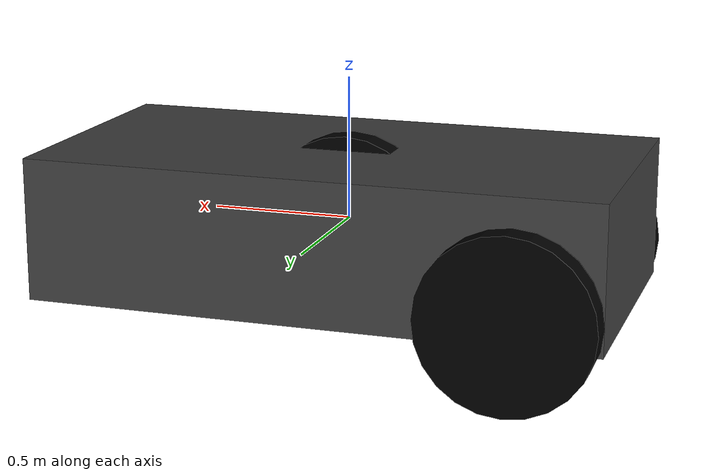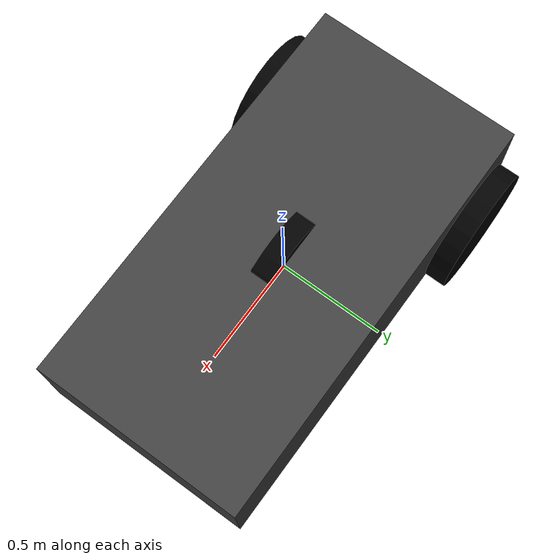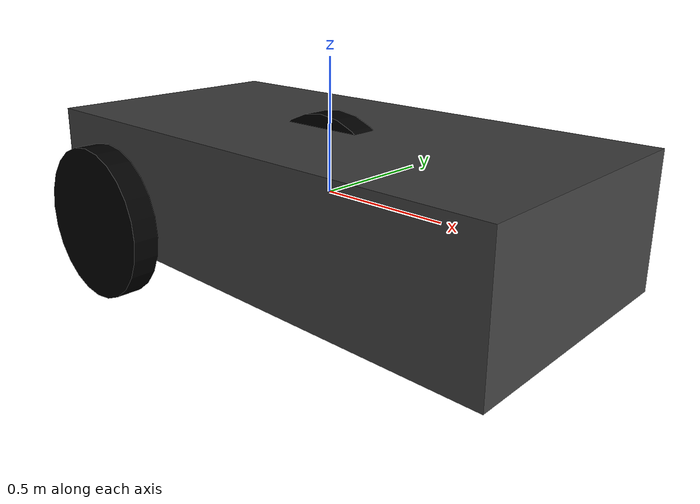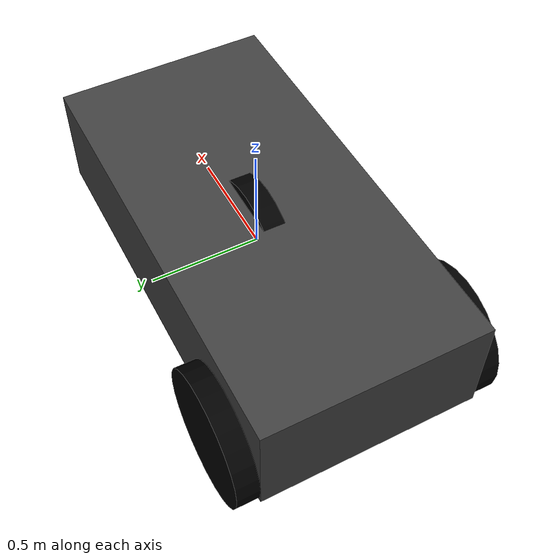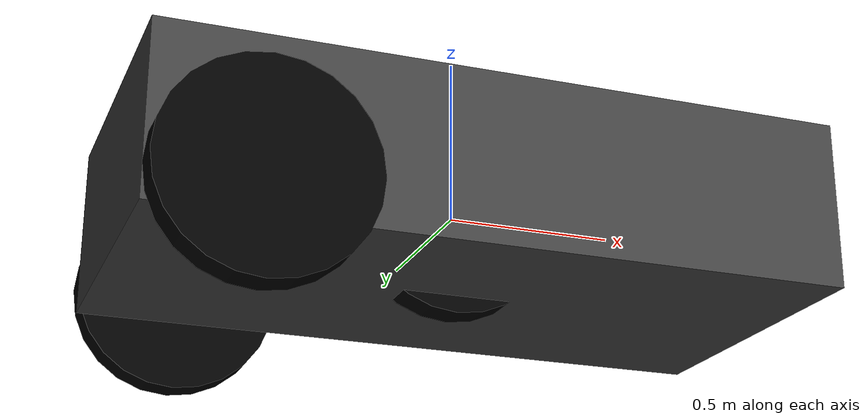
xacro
<?xml version="1.0"?>

<robot name="ackerman_robot" xmlns:xacro="http://www.ros.org/wiki/xacro">

  <!-- Arguments -->
  <xacro:arg name="body_length" default="2.0" />
  <xacro:arg name="body_width" default="1.0" />
  <xacro:arg name="body_height" default="0.5" />
  <xacro:arg name="body_density" default="1000.0" />
  <xacro:arg name="wheel_radius" default="0.3" />
  <xacro:arg name="wheel_width" default="0.1" />
  <xacro:arg name="wheel_density" default="1000.0" />
  <xacro:arg name="max_steering_angle" default="10.6108" />
  <xacro:arg name="max_steering_angular_velocity" default="10.570796" />
  <xacro:arg name="max_steering_effort" default="10.0" />
  <xacro:arg name="max_velocity" default="10.0" />
  <xacro:arg name="max_effort" default="10.0" />

  <!-- Mathematical Constants -->
  <xacro:property name="PI" value="3.14159265"/>

  <!-- Vehicle Properties -->
  <xacro:property name="body_length" value="$(arg body_length)"/>
  <xacro:property name="body_width" value="$(arg body_width)"/>
  <xacro:property name="body_height" value="$(arg body_height)"/>
  <xacro:property name="body_density" value="$(arg body_density)"/>
  <xacro:property name="wheel_radius" value="$(arg wheel_radius)"/>
  <xacro:property name="wheel_width" value="$(arg wheel_width)"/>
  <xacro:property name="wheel_density" value="$(arg wheel_density)"/>
  <xacro:property name="max_steering_angle" value="$(arg max_steering_angle)"/>
  <xacro:property name="max_steering_angular_velocity" value="$(arg max_steering_angular_velocity)"/>
  <xacro:property name="max_steering_effort" value="$(arg max_steering_effort)"/>
  <xacro:property name="max_velocity" value="$(arg max_velocity)"/>
  <xacro:property name="max_effort" value="$(arg max_effort)"/>

  <xacro:property name="body_mass" value="${body_density * body_length * body_height * body_width}"/>
  <xacro:property name="body_inertia_x" value="${1.0/12.0 * body_mass * (body_height*body_height + body_width*body_width)}"/>
  <xacro:property name="body_inertia_y" value="${1.0/12.0 * body_mass * (body_length*body_length + body_height*body_height)}"/>
  <xacro:property name="body_inertia_z" value="${1.0/12.0 * body_mass * (body_length*body_length + body_width*body_width)}"/>
  <xacro:property name="wheel_separation" value="${body_width + wheel_width}"/>
  <xacro:property name="wheel_offset" value="${body_length/2 - wheel_radius}"/>
  <xacro:property name="wheel_mass" value="${wheel_density * PI * wheel_radius * wheel_radius * wheel_width}"/>
  <xacro:property name="wheel_inertia_x" value="${1.0/12.0 * wheel_mass * (3*wheel_radius*wheel_radius + wheel_width*wheel_width)}"/>
  <xacro:property name="wheel_inertia_y" value="${1.0/12.0 * wheel_mass * (3*wheel_radius*wheel_radius + wheel_width*wheel_width)}"/>
  <xacro:property name="wheel_inertia_z" value="${1.0/2.0 * wheel_mass * wheel_radius * wheel_radius}"/>
  <xacro:property name="max_wheel_angular_velocity" value="${max_velocity / wheel_radius}"/>

  <!-- Body Link -->
  <link name="body_link">
    <visual>
      <origin xyz="0.0 0.0 0.0" rpy="0.0 0.0 0.0"/>
      <geometry>
        <box size="${body_length} ${body_width} ${body_height}"/>
      </geometry>
      <material name="body_material">
        <color rgba="0.25 0.25 0.25 1.0"/>
      </material>
    </visual>
    <collision>
      <origin xyz="0.0 0.0 0.0" rpy="0.0 0.0 0.0"/>
      <geometry>
        <box size="${body_length} ${body_width} ${body_height}"/>
      </geometry>
    </collision>
    <inertial>
      <mass value="${body_mass}"/>
      <inertia ixx="${body_inertia_x}" ixy="0.0" ixz="0.0" iyy="${body_inertia_y}" iyz="0" izz="${body_inertia_z}"/>
      <origin xyz="0 0 0" rpy="0 0 0"/>
    </inertial>
  </link>

  <!-- Front Left Wheel -->
  <link name="front_left_wheel_link">
    <visual>
      <origin xyz="0.0 0.0 0.0" rpy="1.570795 0.0 0.0"/>
      <geometry>
        <cylinder radius="${wheel_radius}" length="${wheel_width}"/>
      </geometry>
      <material name="wheel_material">
        <color rgba="0.0 0.0 0.0 1.0"/>
      </material>
    </visual>
    <collision>
      <origin xyz="0.0 0.0 0.0" rpy="1.570795 0.0 0.0"/>
      <geometry>
        <cylinder radius="${wheel_radius}" length="${wheel_width}"/>
      </geometry>
    </collision>
    <inertial>
      <mass value="${wheel_mass}"/>
      <inertia ixx="${wheel_inertia_x}" ixy="0.0" ixz="0.0" iyy="${wheel_inertia_y}" iyz="0" izz="${wheel_inertia_z}"/>
      <origin xyz="0.0 0.0 0.0" rpy="1.570795 0.0 0.0"/>
    </inertial>
  </link>

   <!-- Front Right Wheel -->
  <link name="front_right_wheel_link">
    <visual>
      <origin xyz="0.0 0.0 0.0" rpy="1.570795 0.0 0.0"/>
      <geometry>
        <cylinder radius="${wheel_radius}" length="${wheel_width}"/>
      </geometry>
      <material name="wheel_material">
        <color rgba="0.0 0.0 0.0 1.0"/>
      </material>
    </visual>
    <collision>
      <origin xyz="0.0 0.0 0.0" rpy="1.570795 0.0 0.0"/>
      <geometry>
        <cylinder radius="${wheel_radius}" length="${wheel_width}"/>
      </geometry>
    </collision>
    <inertial>
      <mass value="${wheel_mass}"/>
      <inertia ixx="${wheel_inertia_x}" ixy="0.0" ixz="0.0" iyy="${wheel_inertia_y}" iyz="0" izz="${wheel_inertia_z}"/>
      <origin xyz="0.0 0.0 0.0" rpy="1.570795 0.0 0.0"/>
    </inertial>
  </link>

   <!-- Rear Left Wheel -->
  <link name="rear_left_wheel_link">
    <visual>
      <origin xyz="0.0 0.0 0.0" rpy="1.570795 0.0 0.0"/>
      <geometry>
        <cylinder radius="${wheel_radius}" length="${wheel_width}"/>
      </geometry>
      <material name="wheel_material">
        <color rgba="0.0 0.0 0.0 1.0"/>
      </material>
    </visual>
    <collision>
      <origin xyz="0.0 0.0 0.0" rpy="1.570795 0.0 0.0"/>
      <geometry>
        <cylinder radius="${wheel_radius}" length="${wheel_width}"/>
      </geometry>
    </collision>
    <inertial>
      <mass value="2"/>
      <inertia ixx="${wheel_inertia_x}" ixy="0.0" ixz="0.0" iyy="${wheel_inertia_y}" iyz="0" izz="${wheel_inertia_z}"/>
      <origin xyz="0.0 0.0 0.0" rpy="1.570795 0.0 0.0"/>
    </inertial>
  </link>

  <!-- Rear Right Wheel -->
  <link name="rear_right_wheel_link">
    <visual>
      <origin xyz="0.0 0.0 0.0" rpy="1.570795 0.0 0.0"/>
      <geometry>
        <cylinder radius="${wheel_radius}" length="${wheel_width}"/>
      </geometry>
      <material name="wheel_material">
        <color rgba="0.0 0.0 0.0 1.0"/>
      </material>
    </visual>
    <collision>
      <origin xyz="0.0 0.0 0.0" rpy="1.570795 0.0 0.0"/>
      <geometry>
        <cylinder radius="${wheel_radius}" length="${wheel_width}"/>
      </geometry>
    </collision>
    <inertial>
      <mass value="2"/>
      <inertia ixx="${wheel_inertia_x}" ixy="0.0" ixz="0.0" iyy="${wheel_inertia_y}" iyz="0" izz="${wheel_inertia_z}"/>
      <origin xyz="0.0 0.0 0.0" rpy="1.570795 0.0 0.0"/>
    </inertial>
  </link>

  <!-- Joints -->

   <!-- Front Left Wheel Joint -->
  <joint name="front_left_wheel_joint" type="continuous">
    <origin xyz="0 0 0" rpy="0 0 0"/>
    <parent link="body_link"/>
    <child link="front_left_wheel_link"/>
    <axis xyz="0 1 0"/>
    <limit effort="${max_effort}" velocity="${max_wheel_angular_velocity}"/>
    <dynamics damping="0.1" friction="0.1"/>
  </joint>

   <!-- Front Right Wheel Joint -->
  <joint name="front_right_wheel_joint" type="continuous">
    <origin xyz="0 0 0" rpy="0 0 0"/>
    <parent link="body_link"/>
    <child link="front_right_wheel_link"/>
    <axis xyz="0 1 0"/>
    <limit effort="${max_effort}" velocity="${max_wheel_angular_velocity}"/>
    <dynamics damping="0.1" friction="0.1"/>
  </joint>

  <!-- Rear Left Wheel Joint -->
  <joint name="rear_left_wheel_joint" type="continuous">
    <origin xyz="-${wheel_offset} ${wheel_separation/2} -${wheel_radius/2}" rpy="0 0 0"/>
    <parent link="body_link"/>
    <child link="rear_left_wheel_link"/>
    <axis xyz="0 1 0"/>
    <limit effort="${max_effort}" velocity="${max_wheel_angular_velocity}"/>
    <dynamics damping="0.1" friction="0.1"/>
  </joint>

  <!-- Rear Right Wheel Joint -->
  <joint name="rear_right_wheel_joint" type="continuous">
    <origin xyz="-${wheel_offset} ${-wheel_separation/2} -${wheel_radius/2}" rpy="0 0 0"/>
    <parent link="body_link"/>
    <child link="rear_right_wheel_link"/>
    <axis xyz="0 1 0"/>
    <limit effort="${max_effort}" velocity="${max_wheel_angular_velocity}"/>
    <dynamics damping="0.1" friction="0.1"/>
  </joint>

  <!-- Gazebo Parameters -->
  <gazebo reference="body_link">
    <mu1>0.0001</mu1>
    <mu2>0.0001</mu2>
  </gazebo>

  <gazebo reference="front_right_wheel_link">
    <mu1>100.0</mu1>
    <mu2>100.0</mu2>
  </gazebo>

  <gazebo reference="front_left_wheel_link">
    <mu1>100.0</mu1>
    <mu2>100.0</mu2>
  </gazebo>

  <gazebo reference="rear_right_wheel_link">
    <mu1>100.0</mu1>
    <mu2>100.0</mu2>
  </gazebo>

  <gazebo reference="rear_left_wheel_link">
    <mu1>100.0</mu1>
    <mu2>100.0</mu2>
  </gazebo>

 <!-- Gazebo Plugins -->
  <gazebo>
    <plugin filename="gz-sim-joint-state-publisher-system" name="gz::sim::systems::JointStatePublisher">
      <topic>joint_states</topic>
      <joint_name>front_left_wheel_joint</joint_name>
      <joint_name>front_right_wheel_joint</joint_name>
    </plugin>

    <plugin filename="gz-sim-diff-drive-system" name="gz::sim::systems::DiffDrive">
            <odom_publisher_frequency>50</odom_publisher_frequency>
            <left_joint>front_left_wheel_joint</left_joint>
            <right_joint>front_right_wheel_joint</right_joint>
            <wheel_separation>0.35</wheel_separation>
            <wheel_diameter>0.2</wheel_diameter>
            <max_wheel_torque>20</max_wheel_torque>
            <max_linear_acceleration>1.0</max_linear_acceleration>
            <topic>cmd_vel</topic>
            <publish_odom>true</publish_odom>
            <publish_odom_tf>true</publish_odom_tf>
            <publish_wheel_tf>true</publish_wheel_tf>
            <odom_topic>odom</odom_topic>
            <frame_id>odom</frame_id>
            <child_frame_id>body_link</child_frame_id>
        </plugin>

  </gazebo>
</robot>
